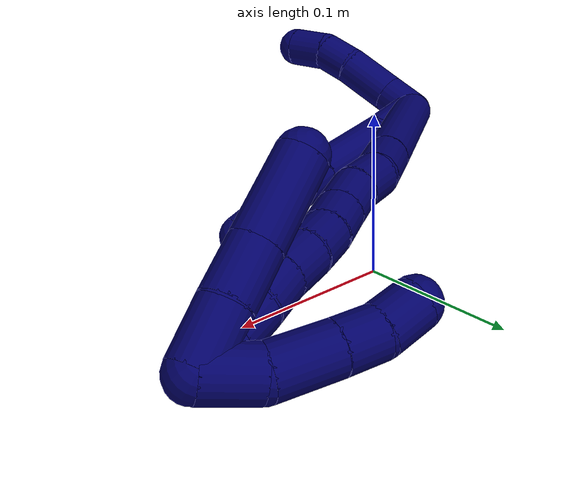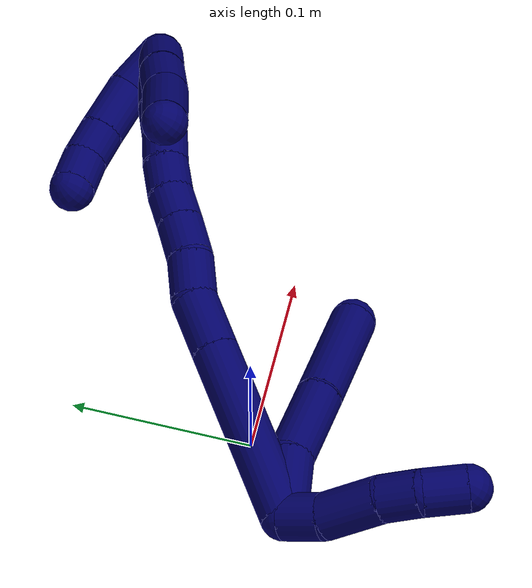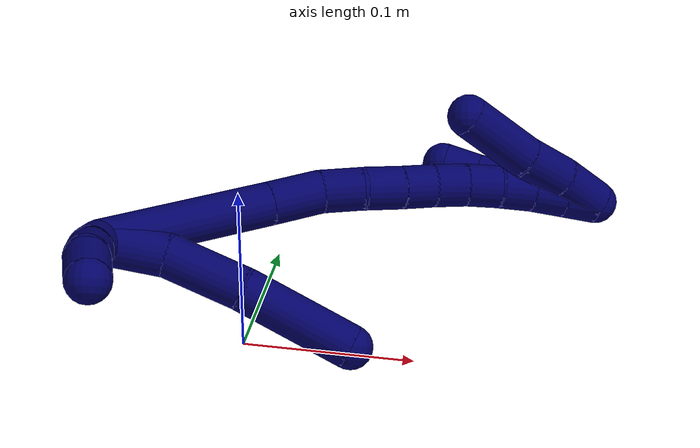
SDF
<sdf version="1.7">
 <world name="default">
  <model name="7">
   <static>0</static>
   <link name="7">
    <collision name="collision-cylinder-e_1_2_8">
     <pose>0.018029 0.003896 -0.002849 -2.20229 1.30921 -1.97308</pose>
     <geometry><cylinder><radius>0.0125</radius><length>0.037328</length></cylinder></geometry>
     <surface>
      <friction><ode><mu>1.16</mu><mu2>1.16</mu2><slip1>0</slip1><slip2>0</slip2></ode></friction>
      <contact><ode><kp>1e+06</kp><kd>1</kd><max_vel>0</max_vel><min_depth>0.001</min_depth></ode></contact>
     </surface>
    </collision>
    <visual name="visual-cylinder-e_1_2_8">
     <pose>0.018029 0.003896 -0.002849 -2.20229 1.30921 -1.97308</pose>
     <geometry><cylinder><radius>0.0125</radius><length>0.037328</length></cylinder></geometry>
     <material><ambient>0.003922 0 0.403922 1</ambient></material>
    </visual>
    <collision name="collision-cylinder-e_2_8_9">
     <pose>0.057294 0.009553 -0.014419 -2.94225 1.17407 -2.84319</pose>
     <geometry><cylinder><radius>0.0125</radius><length>0.046048</length></cylinder></geometry>
     <surface>
      <friction><ode><mu>1.16</mu><mu2>1.16</mu2><slip1>0</slip1><slip2>0</slip2></ode></friction>
      <contact><ode><kp>1e+06</kp><kd>1</kd><max_vel>0</max_vel><min_depth>0.001</min_depth></ode></contact>
     </surface>
    </collision>
    <visual name="visual-cylinder-e_2_8_9">
     <pose>0.057294 0.009553 -0.014419 -2.94225 1.17407 -2.84319</pose>
     <geometry><cylinder><radius>0.0125</radius><length>0.046048</length></cylinder></geometry>
     <material><ambient>0.003922 0 0.403922 1</ambient></material>
    </visual>
    <collision name="collision-cylinder-e_3_9_6">
     <pose>0.107859 0.016954 -0.037893 -2.77656 1.07682 -2.54216</pose>
     <geometry><cylinder><radius>0.0125</radius><length>0.066624</length></cylinder></geometry>
     <surface>
      <friction><ode><mu>1.16</mu><mu2>1.16</mu2><slip1>0</slip1><slip2>0</slip2></ode></friction>
      <contact><ode><kp>1e+06</kp><kd>1</kd><max_vel>0</max_vel><min_depth>0.001</min_depth></ode></contact>
     </surface>
    </collision>
    <visual name="visual-cylinder-e_3_9_6">
     <pose>0.107859 0.016954 -0.037893 -2.77656 1.07682 -2.54216</pose>
     <geometry><cylinder><radius>0.0125</radius><length>0.066624</length></cylinder></geometry>
     <material><ambient>0.003922 0 0.403922 1</ambient></material>
    </visual>
    <collision name="collision-cylinder-e_1_2_10">
     <pose>0.000132 -0.010577 -0.003003 1.84744 0.012047 0.015943</pose>
     <geometry><cylinder><radius>0.0125</radius><length>0.021992</length></cylinder></geometry>
     <surface>
      <friction><ode><mu>1.16</mu><mu2>1.16</mu2><slip1>0</slip1><slip2>0</slip2></ode></friction>
      <contact><ode><kp>1e+06</kp><kd>1</kd><max_vel>0</max_vel><min_depth>0.001</min_depth></ode></contact>
     </surface>
    </collision>
    <visual name="visual-cylinder-e_1_2_10">
     <pose>0.000132 -0.010577 -0.003003 1.84744 0.012047 0.015943</pose>
     <geometry><cylinder><radius>0.0125</radius><length>0.021992</length></cylinder></geometry>
     <material><ambient>0.003922 0 0.403922 1</ambient></material>
    </visual>
    <collision name="collision-cylinder-e_2_10_11">
     <pose>0.004389 -0.03711 -0.008192 1.70694 0.250698 0.286912</pose>
     <geometry><cylinder><radius>0.0125</radius><length>0.03325</length></cylinder></geometry>
     <surface>
      <friction><ode><mu>1.16</mu><mu2>1.16</mu2><slip1>0</slip1><slip2>0</slip2></ode></friction>
      <contact><ode><kp>1e+06</kp><kd>1</kd><max_vel>0</max_vel><min_depth>0.001</min_depth></ode></contact>
     </surface>
    </collision>
    <visual name="visual-cylinder-e_2_10_11">
     <pose>0.004389 -0.03711 -0.008192 1.70694 0.250698 0.286912</pose>
     <geometry><cylinder><radius>0.0125</radius><length>0.03325</length></cylinder></geometry>
     <material><ambient>0.003922 0 0.403922 1</ambient></material>
    </visual>
    <collision name="collision-cylinder-e_3_11_12">
     <pose>0.010334 -0.063164 -0.013395 1.86112 0.171025 0.229146</pose>
     <geometry><cylinder><radius>0.0125</radius><length>0.021389</length></cylinder></geometry>
     <surface>
      <friction><ode><mu>1.16</mu><mu2>1.16</mu2><slip1>0</slip1><slip2>0</slip2></ode></friction>
      <contact><ode><kp>1e+06</kp><kd>1</kd><max_vel>0</max_vel><min_depth>0.001</min_depth></ode></contact>
     </surface>
    </collision>
    <visual name="visual-cylinder-e_3_11_12">
     <pose>0.010334 -0.063164 -0.013395 1.86112 0.171025 0.229146</pose>
     <geometry><cylinder><radius>0.0125</radius><length>0.021389</length></cylinder></geometry>
     <material><ambient>0.003922 0 0.403922 1</ambient></material>
    </visual>
    <collision name="collision-cylinder-e_4_12_5">
     <pose>0.015127 -0.082456 -0.02298 2.19114 0.2573 0.49261</pose>
     <geometry><cylinder><radius>0.0125</radius><length>0.023369</length></cylinder></geometry>
     <surface>
      <friction><ode><mu>1.16</mu><mu2>1.16</mu2><slip1>0</slip1><slip2>0</slip2></ode></friction>
      <contact><ode><kp>1e+06</kp><kd>1</kd><max_vel>0</max_vel><min_depth>0.001</min_depth></ode></contact>
     </surface>
    </collision>
    <visual name="visual-cylinder-e_4_12_5">
     <pose>0.015127 -0.082456 -0.02298 2.19114 0.2573 0.49261</pose>
     <geometry><cylinder><radius>0.0125</radius><length>0.023369</length></cylinder></geometry>
     <material><ambient>0.003922 0 0.403922 1</ambient></material>
    </visual>
    <collision name="collision-cylinder-e_1_2_13">
     <pose>0.042971 0.021121 0.014202 -0.978825 1.03606 -0.589467</pose>
     <geometry><cylinder><radius>0.0125</radius><length>0.099886</length></cylinder></geometry>
     <surface>
      <friction><ode><mu>1.16</mu><mu2>1.16</mu2><slip1>0</slip1><slip2>0</slip2></ode></friction>
      <contact><ode><kp>1e+06</kp><kd>1</kd><max_vel>0</max_vel><min_depth>0.001</min_depth></ode></contact>
     </surface>
    </collision>
    <visual name="visual-cylinder-e_1_2_13">
     <pose>0.042971 0.021121 0.014202 -0.978825 1.03606 -0.589467</pose>
     <geometry><cylinder><radius>0.0125</radius><length>0.099886</length></cylinder></geometry>
     <material><ambient>0.003922 0 0.403922 1</ambient></material>
    </visual>
    <collision name="collision-cylinder-e_2_13_14">
     <pose>0.099726 0.048824 0.033076 -0.953496 1.04103 -0.575697</pose>
     <geometry><cylinder><radius>0.0125</radius><length>0.031948</length></cylinder></geometry>
     <surface>
      <friction><ode><mu>1.16</mu><mu2>1.16</mu2><slip1>0</slip1><slip2>0</slip2></ode></friction>
      <contact><ode><kp>1e+06</kp><kd>1</kd><max_vel>0</max_vel><min_depth>0.001</min_depth></ode></contact>
     </surface>
    </collision>
    <visual name="visual-cylinder-e_2_13_14">
     <pose>0.099726 0.048824 0.033076 -0.953496 1.04103 -0.575697</pose>
     <geometry><cylinder><radius>0.0125</radius><length>0.031948</length></cylinder></geometry>
     <material><ambient>0.003922 0 0.403922 1</ambient></material>
    </visual>
    <collision name="collision-cylinder-e_3_14_15">
     <pose>0.125293 0.058282 0.03919 -1.10616 1.30423 -0.880977</pose>
     <geometry><cylinder><radius>0.0125</radius><length>0.024427</length></cylinder></geometry>
     <surface>
      <friction><ode><mu>1.16</mu><mu2>1.16</mu2><slip1>0</slip1><slip2>0</slip2></ode></friction>
      <contact><ode><kp>1e+06</kp><kd>1</kd><max_vel>0</max_vel><min_depth>0.001</min_depth></ode></contact>
     </surface>
    </collision>
    <visual name="visual-cylinder-e_3_14_15">
     <pose>0.125293 0.058282 0.03919 -1.10616 1.30423 -0.880977</pose>
     <geometry><cylinder><radius>0.0125</radius><length>0.024427</length></cylinder></geometry>
     <material><ambient>0.003922 0 0.403922 1</ambient></material>
    </visual>
    <collision name="collision-cylinder-e_4_15_16">
     <pose>0.14755 0.066157 0.041853 -1.33115 1.11419 -0.909662</pose>
     <geometry><cylinder><radius>0.0125</radius><length>0.023341</length></cylinder></geometry>
     <surface>
      <friction><ode><mu>1.16</mu><mu2>1.16</mu2><slip1>0</slip1><slip2>0</slip2></ode></friction>
      <contact><ode><kp>1e+06</kp><kd>1</kd><max_vel>0</max_vel><min_depth>0.001</min_depth></ode></contact>
     </surface>
    </collision>
    <visual name="visual-cylinder-e_4_15_16">
     <pose>0.14755 0.066157 0.041853 -1.33115 1.11419 -0.909662</pose>
     <geometry><cylinder><radius>0.0125</radius><length>0.023341</length></cylinder></geometry>
     <material><ambient>0.003922 0 0.403922 1</ambient></material>
    </visual>
    <collision name="collision-cylinder-e_5_16_17">
     <pose>0.166925 0.075547 0.044403 -1.27709 1.09482 -0.849792</pose>
     <geometry><cylinder><radius>0.0125</radius><length>0.020028</length></cylinder></geometry>
     <surface>
      <friction><ode><mu>1.16</mu><mu2>1.16</mu2><slip1>0</slip1><slip2>0</slip2></ode></friction>
      <contact><ode><kp>1e+06</kp><kd>1</kd><max_vel>0</max_vel><min_depth>0.001</min_depth></ode></contact>
     </surface>
    </collision>
    <visual name="visual-cylinder-e_5_16_17">
     <pose>0.166925 0.075547 0.044403 -1.27709 1.09482 -0.849792</pose>
     <geometry><cylinder><radius>0.0125</radius><length>0.020028</length></cylinder></geometry>
     <material><ambient>0.003922 0 0.403922 1</ambient></material>
    </visual>
    <collision name="collision-cylinder-e_6_17_18">
     <pose>0.185222 0.083247 0.046627 -1.3063 1.22109 -0.983171</pose>
     <geometry><cylinder><radius>0.0125</radius><length>0.020001</length></cylinder></geometry>
     <surface>
      <friction><ode><mu>1.16</mu><mu2>1.16</mu2><slip1>0</slip1><slip2>0</slip2></ode></friction>
      <contact><ode><kp>1e+06</kp><kd>1</kd><max_vel>0</max_vel><min_depth>0.001</min_depth></ode></contact>
     </surface>
    </collision>
    <visual name="visual-cylinder-e_6_17_18">
     <pose>0.185222 0.083247 0.046627 -1.3063 1.22109 -0.983171</pose>
     <geometry><cylinder><radius>0.0125</radius><length>0.020001</length></cylinder></geometry>
     <material><ambient>0.003922 0 0.403922 1</ambient></material>
    </visual>
    <collision name="collision-cylinder-e_7_18_19">
     <pose>0.204434 0.08926 0.047488 -1.58373 1.30181 -1.3143</pose>
     <geometry><cylinder><radius>0.0125</radius><length>0.020367</length></cylinder></geometry>
     <surface>
      <friction><ode><mu>1.16</mu><mu2>1.16</mu2><slip1>0</slip1><slip2>0</slip2></ode></friction>
      <contact><ode><kp>1e+06</kp><kd>1</kd><max_vel>0</max_vel><min_depth>0.001</min_depth></ode></contact>
     </surface>
    </collision>
    <visual name="visual-cylinder-e_7_18_19">
     <pose>0.204434 0.08926 0.047488 -1.58373 1.30181 -1.3143</pose>
     <geometry><cylinder><radius>0.0125</radius><length>0.020367</length></cylinder></geometry>
     <material><ambient>0.003922 0 0.403922 1</ambient></material>
    </visual>
    <collision name="collision-cylinder-e_8_19_20">
     <pose>0.223486 0.095798 0.047183 -1.64102 1.17658 -1.2423</pose>
     <geometry><cylinder><radius>0.0125</radius><length>0.020002</length></cylinder></geometry>
     <surface>
      <friction><ode><mu>1.16</mu><mu2>1.16</mu2><slip1>0</slip1><slip2>0</slip2></ode></friction>
      <contact><ode><kp>1e+06</kp><kd>1</kd><max_vel>0</max_vel><min_depth>0.001</min_depth></ode></contact>
     </surface>
    </collision>
    <visual name="visual-cylinder-e_8_19_20">
     <pose>0.223486 0.095798 0.047183 -1.64102 1.17658 -1.2423</pose>
     <geometry><cylinder><radius>0.0125</radius><length>0.020002</length></cylinder></geometry>
     <material><ambient>0.003922 0 0.403922 1</ambient></material>
    </visual>
    <collision name="collision-cylinder-e_9_20_21">
     <pose>0.242129 0.102833 0.045817 -1.90074 1.22532 -1.55434</pose>
     <geometry><cylinder><radius>0.0125</radius><length>0.02</length></cylinder></geometry>
     <surface>
      <friction><ode><mu>1.16</mu><mu2>1.16</mu2><slip1>0</slip1><slip2>0</slip2></ode></friction>
      <contact><ode><kp>1e+06</kp><kd>1</kd><max_vel>0</max_vel><min_depth>0.001</min_depth></ode></contact>
     </surface>
    </collision>
    <visual name="visual-cylinder-e_9_20_21">
     <pose>0.242129 0.102833 0.045817 -1.90074 1.22532 -1.55434</pose>
     <geometry><cylinder><radius>0.0125</radius><length>0.02</length></cylinder></geometry>
     <material><ambient>0.003922 0 0.403922 1</ambient></material>
    </visual>
    <collision name="collision-cylinder-e_10_21_1">
     <pose>0.260912 0.109333 0.043598 -1.89868 1.21519 -1.54137</pose>
     <geometry><cylinder><radius>0.0125</radius><length>0.02</length></cylinder></geometry>
     <surface>
      <friction><ode><mu>1.16</mu><mu2>1.16</mu2><slip1>0</slip1><slip2>0</slip2></ode></friction>
      <contact><ode><kp>1e+06</kp><kd>1</kd><max_vel>0</max_vel><min_depth>0.001</min_depth></ode></contact>
     </surface>
    </collision>
    <visual name="visual-cylinder-e_10_21_1">
     <pose>0.260912 0.109333 0.043598 -1.89868 1.21519 -1.54137</pose>
     <geometry><cylinder><radius>0.0125</radius><length>0.02</length></cylinder></geometry>
     <material><ambient>0.003922 0 0.403922 1</ambient></material>
    </visual>
    <collision name="collision-cylinder-e_1_1_22">
     <pose>0.259161 0.119373 0.045201 -1.1869 -0.991868 0.699886</pose>
     <geometry><cylinder><radius>0.0125</radius><length>0.026584</length></cylinder></geometry>
     <surface>
      <friction><ode><mu>1.16</mu><mu2>1.16</mu2><slip1>0</slip1><slip2>0</slip2></ode></friction>
      <contact><ode><kp>1e+06</kp><kd>1</kd><max_vel>0</max_vel><min_depth>0.001</min_depth></ode></contact>
     </surface>
    </collision>
    <visual name="visual-cylinder-e_1_1_22">
     <pose>0.259161 0.119373 0.045201 -1.1869 -0.991868 0.699886</pose>
     <geometry><cylinder><radius>0.0125</radius><length>0.026584</length></cylinder></geometry>
     <material><ambient>0.003922 0 0.403922 1</ambient></material>
    </visual>
    <collision name="collision-cylinder-e_2_22_23">
     <pose>0.233219 0.129053 0.052001 -0.624407 -1.24383 0.454709</pose>
     <geometry><cylinder><radius>0.0125</radius><length>0.031288</length></cylinder></geometry>
     <surface>
      <friction><ode><mu>1.16</mu><mu2>1.16</mu2><slip1>0</slip1><slip2>0</slip2></ode></friction>
      <contact><ode><kp>1e+06</kp><kd>1</kd><max_vel>0</max_vel><min_depth>0.001</min_depth></ode></contact>
     </surface>
    </collision>
    <visual name="visual-cylinder-e_2_22_23">
     <pose>0.233219 0.129053 0.052001 -0.624407 -1.24383 0.454709</pose>
     <geometry><cylinder><radius>0.0125</radius><length>0.031288</length></cylinder></geometry>
     <material><ambient>0.003922 0 0.403922 1</ambient></material>
    </visual>
    <collision name="collision-cylinder-e_3_23_24">
     <pose>0.20875 0.133522 0.058604 -0.544943 -1.27378 0.407645</pose>
     <geometry><cylinder><radius>0.0125</radius><length>0.020193</length></cylinder></geometry>
     <surface>
      <friction><ode><mu>1.16</mu><mu2>1.16</mu2><slip1>0</slip1><slip2>0</slip2></ode></friction>
      <contact><ode><kp>1e+06</kp><kd>1</kd><max_vel>0</max_vel><min_depth>0.001</min_depth></ode></contact>
     </surface>
    </collision>
    <visual name="visual-cylinder-e_3_23_24">
     <pose>0.20875 0.133522 0.058604 -0.544943 -1.27378 0.407645</pose>
     <geometry><cylinder><radius>0.0125</radius><length>0.020193</length></cylinder></geometry>
     <material><ambient>0.003922 0 0.403922 1</ambient></material>
    </visual>
    <collision name="collision-cylinder-e_4_24_4">
     <pose>0.188646 0.134004 0.06429 0.321008 -1.2624 -0.235583</pose>
     <geometry><cylinder><radius>0.0125</radius><length>0.021935</length></cylinder></geometry>
     <surface>
      <friction><ode><mu>1.16</mu><mu2>1.16</mu2><slip1>0</slip1><slip2>0</slip2></ode></friction>
      <contact><ode><kp>1e+06</kp><kd>1</kd><max_vel>0</max_vel><min_depth>0.001</min_depth></ode></contact>
     </surface>
    </collision>
    <visual name="visual-cylinder-e_4_24_4">
     <pose>0.188646 0.134004 0.06429 0.321008 -1.2624 -0.235583</pose>
     <geometry><cylinder><radius>0.0125</radius><length>0.021935</length></cylinder></geometry>
     <material><ambient>0.003922 0 0.403922 1</ambient></material>
    </visual>
    <collision name="collision-cylinder-e_1_1_25">
     <pose>0.260396 0.104838 0.048299 0.929099 -0.793736 -0.414034</pose>
     <geometry><cylinder><radius>0.0125</radius><length>0.027744</length></cylinder></geometry>
     <surface>
      <friction><ode><mu>1.16</mu><mu2>1.16</mu2><slip1>0</slip1><slip2>0</slip2></ode></friction>
      <contact><ode><kp>1e+06</kp><kd>1</kd><max_vel>0</max_vel><min_depth>0.001</min_depth></ode></contact>
     </surface>
    </collision>
    <visual name="visual-cylinder-e_1_1_25">
     <pose>0.260396 0.104838 0.048299 0.929099 -0.793736 -0.414034</pose>
     <geometry><cylinder><radius>0.0125</radius><length>0.027744</length></cylinder></geometry>
     <material><ambient>0.003922 0 0.403922 1</ambient></material>
    </visual>
    <collision name="collision-cylinder-e_2_25_26">
     <pose>0.239838 0.089353 0.058793 1.02503 -0.870028 -0.511492</pose>
     <geometry><cylinder><radius>0.0125</radius><length>0.027914</length></cylinder></geometry>
     <surface>
      <friction><ode><mu>1.16</mu><mu2>1.16</mu2><slip1>0</slip1><slip2>0</slip2></ode></friction>
      <contact><ode><kp>1e+06</kp><kd>1</kd><max_vel>0</max_vel><min_depth>0.001</min_depth></ode></contact>
     </surface>
    </collision>
    <visual name="visual-cylinder-e_2_25_26">
     <pose>0.239838 0.089353 0.058793 1.02503 -0.870028 -0.511492</pose>
     <geometry><cylinder><radius>0.0125</radius><length>0.027914</length></cylinder></geometry>
     <material><ambient>0.003922 0 0.403922 1</ambient></material>
    </visual>
    <collision name="collision-cylinder-e_3_26_3">
     <pose>0.213088 0.069897 0.073187 0.880123 -0.81153 -0.399178</pose>
     <geometry><cylinder><radius>0.0125</radius><length>0.044342</length></cylinder></geometry>
     <surface>
      <friction><ode><mu>1.16</mu><mu2>1.16</mu2><slip1>0</slip1><slip2>0</slip2></ode></friction>
      <contact><ode><kp>1e+06</kp><kd>1</kd><max_vel>0</max_vel><min_depth>0.001</min_depth></ode></contact>
     </surface>
    </collision>
    <visual name="visual-cylinder-e_3_26_3">
     <pose>0.213088 0.069897 0.073187 0.880123 -0.81153 -0.399178</pose>
     <geometry><cylinder><radius>0.0125</radius><length>0.044342</length></cylinder></geometry>
     <material><ambient>0.003922 0 0.403922 1</ambient></material>
    </visual>
    <collision name="collision-sphere-3">
     <pose>0.197007 0.058132 0.08291 0 -0 0</pose>
     <geometry><sphere><radius>0.0125</radius></sphere></geometry>
     <surface>
      <friction><ode><mu>1.16</mu><mu2>1.16</mu2><slip1>0</slip1><slip2>0</slip2></ode></friction>
      <contact><ode><kp>1e+06</kp><kd>1</kd><max_vel>0</max_vel><min_depth>0.001</min_depth></ode></contact>
     </surface>
    </collision>
    <visual name="visual-sphere-3">
     <pose>0.197007 0.058132 0.08291 0 -0 0</pose>
     <geometry><sphere><radius>0.0125</radius></sphere></geometry>
     <material><ambient>0.003922 0 0.403922 1</ambient></material>
    </visual>
    <collision name="collision-sphere-26">
     <pose>0.22917 0.081661 0.063464 0 -0 0</pose>
     <geometry><sphere><radius>0.0125</radius></sphere></geometry>
     <surface>
      <friction><ode><mu>1.16</mu><mu2>1.16</mu2><slip1>0</slip1><slip2>0</slip2></ode></friction>
      <contact><ode><kp>1e+06</kp><kd>1</kd><max_vel>0</max_vel><min_depth>0.001</min_depth></ode></contact>
     </surface>
    </collision>
    <visual name="visual-sphere-26">
     <pose>0.22917 0.081661 0.063464 0 -0 0</pose>
     <geometry><sphere><radius>0.0125</radius></sphere></geometry>
     <material><ambient>0.003922 0 0.403922 1</ambient></material>
    </visual>
    <collision name="collision-sphere-25">
     <pose>0.250506 0.097046 0.054121 0 -0 0</pose>
     <geometry><sphere><radius>0.0125</radius></sphere></geometry>
     <surface>
      <friction><ode><mu>1.16</mu><mu2>1.16</mu2><slip1>0</slip1><slip2>0</slip2></ode></friction>
      <contact><ode><kp>1e+06</kp><kd>1</kd><max_vel>0</max_vel><min_depth>0.001</min_depth></ode></contact>
     </surface>
    </collision>
    <visual name="visual-sphere-25">
     <pose>0.250506 0.097046 0.054121 0 -0 0</pose>
     <geometry><sphere><radius>0.0125</radius></sphere></geometry>
     <material><ambient>0.003922 0 0.403922 1</ambient></material>
    </visual>
    <collision name="collision-sphere-4">
     <pose>0.178195 0.132953 0.067449 0 -0 0</pose>
     <geometry><sphere><radius>0.0125</radius></sphere></geometry>
     <surface>
      <friction><ode><mu>1.16</mu><mu2>1.16</mu2><slip1>0</slip1><slip2>0</slip2></ode></friction>
      <contact><ode><kp>1e+06</kp><kd>1</kd><max_vel>0</max_vel><min_depth>0.001</min_depth></ode></contact>
     </surface>
    </collision>
    <visual name="visual-sphere-4">
     <pose>0.178195 0.132953 0.067449 0 -0 0</pose>
     <geometry><sphere><radius>0.0125</radius></sphere></geometry>
     <material><ambient>0.003922 0 0.403922 1</ambient></material>
    </visual>
    <collision name="collision-sphere-24">
     <pose>0.199096 0.135054 0.061131 0 -0 0</pose>
     <geometry><sphere><radius>0.0125</radius></sphere></geometry>
     <surface>
      <friction><ode><mu>1.16</mu><mu2>1.16</mu2><slip1>0</slip1><slip2>0</slip2></ode></friction>
      <contact><ode><kp>1e+06</kp><kd>1</kd><max_vel>0</max_vel><min_depth>0.001</min_depth></ode></contact>
     </surface>
    </collision>
    <visual name="visual-sphere-24">
     <pose>0.199096 0.135054 0.061131 0 -0 0</pose>
     <geometry><sphere><radius>0.0125</radius></sphere></geometry>
     <material><ambient>0.003922 0 0.403922 1</ambient></material>
    </visual>
    <collision name="collision-sphere-23">
     <pose>0.218404 0.131991 0.056077 0 -0 0</pose>
     <geometry><sphere><radius>0.0125</radius></sphere></geometry>
     <surface>
      <friction><ode><mu>1.16</mu><mu2>1.16</mu2><slip1>0</slip1><slip2>0</slip2></ode></friction>
      <contact><ode><kp>1e+06</kp><kd>1</kd><max_vel>0</max_vel><min_depth>0.001</min_depth></ode></contact>
     </surface>
    </collision>
    <visual name="visual-sphere-23">
     <pose>0.218404 0.131991 0.056077 0 -0 0</pose>
     <geometry><sphere><radius>0.0125</radius></sphere></geometry>
     <material><ambient>0.003922 0 0.403922 1</ambient></material>
    </visual>
    <collision name="collision-sphere-22">
     <pose>0.248035 0.126116 0.047925 0 -0 0</pose>
     <geometry><sphere><radius>0.0125</radius></sphere></geometry>
     <surface>
      <friction><ode><mu>1.16</mu><mu2>1.16</mu2><slip1>0</slip1><slip2>0</slip2></ode></friction>
      <contact><ode><kp>1e+06</kp><kd>1</kd><max_vel>0</max_vel><min_depth>0.001</min_depth></ode></contact>
     </surface>
    </collision>
    <visual name="visual-sphere-22">
     <pose>0.248035 0.126116 0.047925 0 -0 0</pose>
     <geometry><sphere><radius>0.0125</radius></sphere></geometry>
     <material><ambient>0.003922 0 0.403922 1</ambient></material>
    </visual>
    <collision name="collision-sphere-1">
     <pose>0.270287 0.11263 0.042477 0 -0 0</pose>
     <geometry><sphere><radius>0.0125</radius></sphere></geometry>
     <surface>
      <friction><ode><mu>1.16</mu><mu2>1.16</mu2><slip1>0</slip1><slip2>0</slip2></ode></friction>
      <contact><ode><kp>1e+06</kp><kd>1</kd><max_vel>0</max_vel><min_depth>0.001</min_depth></ode></contact>
     </surface>
    </collision>
    <visual name="visual-sphere-1">
     <pose>0.270287 0.11263 0.042477 0 -0 0</pose>
     <geometry><sphere><radius>0.0125</radius></sphere></geometry>
     <material><ambient>0.003922 0 0.403922 1</ambient></material>
    </visual>
    <collision name="collision-sphere-21">
     <pose>0.251538 0.106037 0.04472 0 -0 0</pose>
     <geometry><sphere><radius>0.0125</radius></sphere></geometry>
     <surface>
      <friction><ode><mu>1.16</mu><mu2>1.16</mu2><slip1>0</slip1><slip2>0</slip2></ode></friction>
      <contact><ode><kp>1e+06</kp><kd>1</kd><max_vel>0</max_vel><min_depth>0.001</min_depth></ode></contact>
     </surface>
    </collision>
    <visual name="visual-sphere-21">
     <pose>0.251538 0.106037 0.04472 0 -0 0</pose>
     <geometry><sphere><radius>0.0125</radius></sphere></geometry>
     <material><ambient>0.003922 0 0.403922 1</ambient></material>
    </visual>
    <collision name="collision-sphere-11">
     <pose>0.008514 -0.053067 -0.010378 0 -0 0</pose>
     <geometry><sphere><radius>0.0125</radius></sphere></geometry>
     <surface>
      <friction><ode><mu>1.16</mu><mu2>1.16</mu2><slip1>0</slip1><slip2>0</slip2></ode></friction>
      <contact><ode><kp>1e+06</kp><kd>1</kd><max_vel>0</max_vel><min_depth>0.001</min_depth></ode></contact>
     </surface>
    </collision>
    <visual name="visual-sphere-11">
     <pose>0.008514 -0.053067 -0.010378 0 -0 0</pose>
     <geometry><sphere><radius>0.0125</radius></sphere></geometry>
     <material><ambient>0.003922 0 0.403922 1</ambient></material>
    </visual>
    <collision name="collision-sphere-10">
     <pose>0.000265 -0.021154 -0.006006 0 -0 0</pose>
     <geometry><sphere><radius>0.0125</radius></sphere></geometry>
     <surface>
      <friction><ode><mu>1.16</mu><mu2>1.16</mu2><slip1>0</slip1><slip2>0</slip2></ode></friction>
      <contact><ode><kp>1e+06</kp><kd>1</kd><max_vel>0</max_vel><min_depth>0.001</min_depth></ode></contact>
     </surface>
    </collision>
    <visual name="visual-sphere-10">
     <pose>0.000265 -0.021154 -0.006006 0 -0 0</pose>
     <geometry><sphere><radius>0.0125</radius></sphere></geometry>
     <material><ambient>0.003922 0 0.403922 1</ambient></material>
    </visual>
    <collision name="collision-sphere-6">
     <pose>0.137189 0.022592 -0.052647 0 -0 0</pose>
     <geometry><sphere><radius>0.0125</radius></sphere></geometry>
     <surface>
      <friction><ode><mu>1.16</mu><mu2>1.16</mu2><slip1>0</slip1><slip2>0</slip2></ode></friction>
      <contact><ode><kp>1e+06</kp><kd>1</kd><max_vel>0</max_vel><min_depth>0.001</min_depth></ode></contact>
     </surface>
    </collision>
    <visual name="visual-sphere-6">
     <pose>0.137189 0.022592 -0.052647 0 -0 0</pose>
     <geometry><sphere><radius>0.0125</radius></sphere></geometry>
     <material><ambient>0.003922 0 0.403922 1</ambient></material>
    </visual>
    <collision name="collision-sphere-9">
     <pose>0.07853 0.011315 -0.02314 0 -0 0</pose>
     <geometry><sphere><radius>0.0125</radius></sphere></geometry>
     <surface>
      <friction><ode><mu>1.16</mu><mu2>1.16</mu2><slip1>0</slip1><slip2>0</slip2></ode></friction>
      <contact><ode><kp>1e+06</kp><kd>1</kd><max_vel>0</max_vel><min_depth>0.001</min_depth></ode></contact>
     </surface>
    </collision>
    <visual name="visual-sphere-9">
     <pose>0.07853 0.011315 -0.02314 0 -0 0</pose>
     <geometry><sphere><radius>0.0125</radius></sphere></geometry>
     <material><ambient>0.003922 0 0.403922 1</ambient></material>
    </visual>
    <collision name="collision-sphere-2">
     <geometry><sphere><radius>0.0125</radius></sphere></geometry>
     <surface>
      <friction><ode><mu>1.16</mu><mu2>1.16</mu2><slip1>0</slip1><slip2>0</slip2></ode></friction>
      <contact><ode><kp>1e+06</kp><kd>1</kd><max_vel>0</max_vel><min_depth>0.001</min_depth></ode></contact>
     </surface>
    </collision>
    <visual name="visual-sphere-2">
     <geometry><sphere><radius>0.0125</radius></sphere></geometry>
     <material><ambient>0.003922 0 0.403922 1</ambient></material>
    </visual>
    <collision name="collision-sphere-19">
     <pose>0.214252 0.091966 0.047453 0 -0 0</pose>
     <geometry><sphere><radius>0.0125</radius></sphere></geometry>
     <surface>
      <friction><ode><mu>1.16</mu><mu2>1.16</mu2><slip1>0</slip1><slip2>0</slip2></ode></friction>
      <contact><ode><kp>1e+06</kp><kd>1</kd><max_vel>0</max_vel><min_depth>0.001</min_depth></ode></contact>
     </surface>
    </collision>
    <visual name="visual-sphere-19">
     <pose>0.214252 0.091966 0.047453 0 -0 0</pose>
     <geometry><sphere><radius>0.0125</radius></sphere></geometry>
     <material><ambient>0.003922 0 0.403922 1</ambient></material>
    </visual>
    <collision name="collision-sphere-8">
     <pose>0.036058 0.007792 -0.005699 0 -0 0</pose>
     <geometry><sphere><radius>0.0125</radius></sphere></geometry>
     <surface>
      <friction><ode><mu>1.16</mu><mu2>1.16</mu2><slip1>0</slip1><slip2>0</slip2></ode></friction>
      <contact><ode><kp>1e+06</kp><kd>1</kd><max_vel>0</max_vel><min_depth>0.001</min_depth></ode></contact>
     </surface>
    </collision>
    <visual name="visual-sphere-8">
     <pose>0.036058 0.007792 -0.005699 0 -0 0</pose>
     <geometry><sphere><radius>0.0125</radius></sphere></geometry>
     <material><ambient>0.003922 0 0.403922 1</ambient></material>
    </visual>
    <collision name="collision-sphere-12">
     <pose>0.012154 -0.073262 -0.016412 0 -0 0</pose>
     <geometry><sphere><radius>0.0125</radius></sphere></geometry>
     <surface>
      <friction><ode><mu>1.16</mu><mu2>1.16</mu2><slip1>0</slip1><slip2>0</slip2></ode></friction>
      <contact><ode><kp>1e+06</kp><kd>1</kd><max_vel>0</max_vel><min_depth>0.001</min_depth></ode></contact>
     </surface>
    </collision>
    <visual name="visual-sphere-12">
     <pose>0.012154 -0.073262 -0.016412 0 -0 0</pose>
     <geometry><sphere><radius>0.0125</radius></sphere></geometry>
     <material><ambient>0.003922 0 0.403922 1</ambient></material>
    </visual>
    <collision name="collision-sphere-5">
     <pose>0.018101 -0.091651 -0.029549 0 -0 0</pose>
     <geometry><sphere><radius>0.0125</radius></sphere></geometry>
     <surface>
      <friction><ode><mu>1.16</mu><mu2>1.16</mu2><slip1>0</slip1><slip2>0</slip2></ode></friction>
      <contact><ode><kp>1e+06</kp><kd>1</kd><max_vel>0</max_vel><min_depth>0.001</min_depth></ode></contact>
     </surface>
    </collision>
    <visual name="visual-sphere-5">
     <pose>0.018101 -0.091651 -0.029549 0 -0 0</pose>
     <geometry><sphere><radius>0.0125</radius></sphere></geometry>
     <material><ambient>0.003922 0 0.403922 1</ambient></material>
    </visual>
    <collision name="collision-sphere-13">
     <pose>0.085942 0.042241 0.028404 0 -0 0</pose>
     <geometry><sphere><radius>0.0125</radius></sphere></geometry>
     <surface>
      <friction><ode><mu>1.16</mu><mu2>1.16</mu2><slip1>0</slip1><slip2>0</slip2></ode></friction>
      <contact><ode><kp>1e+06</kp><kd>1</kd><max_vel>0</max_vel><min_depth>0.001</min_depth></ode></contact>
     </surface>
    </collision>
    <visual name="visual-sphere-13">
     <pose>0.085942 0.042241 0.028404 0 -0 0</pose>
     <geometry><sphere><radius>0.0125</radius></sphere></geometry>
     <material><ambient>0.003922 0 0.403922 1</ambient></material>
    </visual>
    <collision name="collision-sphere-14">
     <pose>0.113511 0.055406 0.037749 0 -0 0</pose>
     <geometry><sphere><radius>0.0125</radius></sphere></geometry>
     <surface>
      <friction><ode><mu>1.16</mu><mu2>1.16</mu2><slip1>0</slip1><slip2>0</slip2></ode></friction>
      <contact><ode><kp>1e+06</kp><kd>1</kd><max_vel>0</max_vel><min_depth>0.001</min_depth></ode></contact>
     </surface>
    </collision>
    <visual name="visual-sphere-14">
     <pose>0.113511 0.055406 0.037749 0 -0 0</pose>
     <geometry><sphere><radius>0.0125</radius></sphere></geometry>
     <material><ambient>0.003922 0 0.403922 1</ambient></material>
    </visual>
    <collision name="collision-sphere-15">
     <pose>0.137075 0.061159 0.040632 0 -0 0</pose>
     <geometry><sphere><radius>0.0125</radius></sphere></geometry>
     <surface>
      <friction><ode><mu>1.16</mu><mu2>1.16</mu2><slip1>0</slip1><slip2>0</slip2></ode></friction>
      <contact><ode><kp>1e+06</kp><kd>1</kd><max_vel>0</max_vel><min_depth>0.001</min_depth></ode></contact>
     </surface>
    </collision>
    <visual name="visual-sphere-15">
     <pose>0.137075 0.061159 0.040632 0 -0 0</pose>
     <geometry><sphere><radius>0.0125</radius></sphere></geometry>
     <material><ambient>0.003922 0 0.403922 1</ambient></material>
    </visual>
    <collision name="collision-sphere-16">
     <pose>0.158024 0.071155 0.043075 0 -0 0</pose>
     <geometry><sphere><radius>0.0125</radius></sphere></geometry>
     <surface>
      <friction><ode><mu>1.16</mu><mu2>1.16</mu2><slip1>0</slip1><slip2>0</slip2></ode></friction>
      <contact><ode><kp>1e+06</kp><kd>1</kd><max_vel>0</max_vel><min_depth>0.001</min_depth></ode></contact>
     </surface>
    </collision>
    <visual name="visual-sphere-16">
     <pose>0.158024 0.071155 0.043075 0 -0 0</pose>
     <geometry><sphere><radius>0.0125</radius></sphere></geometry>
     <material><ambient>0.003922 0 0.403922 1</ambient></material>
    </visual>
    <collision name="collision-sphere-17">
     <pose>0.175826 0.079939 0.045731 0 -0 0</pose>
     <geometry><sphere><radius>0.0125</radius></sphere></geometry>
     <surface>
      <friction><ode><mu>1.16</mu><mu2>1.16</mu2><slip1>0</slip1><slip2>0</slip2></ode></friction>
      <contact><ode><kp>1e+06</kp><kd>1</kd><max_vel>0</max_vel><min_depth>0.001</min_depth></ode></contact>
     </surface>
    </collision>
    <visual name="visual-sphere-17">
     <pose>0.175826 0.079939 0.045731 0 -0 0</pose>
     <geometry><sphere><radius>0.0125</radius></sphere></geometry>
     <material><ambient>0.003922 0 0.403922 1</ambient></material>
    </visual>
    <collision name="collision-sphere-18">
     <pose>0.194617 0.086554 0.047523 0 -0 0</pose>
     <geometry><sphere><radius>0.0125</radius></sphere></geometry>
     <surface>
      <friction><ode><mu>1.16</mu><mu2>1.16</mu2><slip1>0</slip1><slip2>0</slip2></ode></friction>
      <contact><ode><kp>1e+06</kp><kd>1</kd><max_vel>0</max_vel><min_depth>0.001</min_depth></ode></contact>
     </surface>
    </collision>
    <visual name="visual-sphere-18">
     <pose>0.194617 0.086554 0.047523 0 -0 0</pose>
     <geometry><sphere><radius>0.0125</radius></sphere></geometry>
     <material><ambient>0.003922 0 0.403922 1</ambient></material>
    </visual>
    <collision name="collision-sphere-20">
     <pose>0.23272 0.09963 0.046914 0 -0 0</pose>
     <geometry><sphere><radius>0.0125</radius></sphere></geometry>
     <surface>
      <friction><ode><mu>1.16</mu><mu2>1.16</mu2><slip1>0</slip1><slip2>0</slip2></ode></friction>
      <contact><ode><kp>1e+06</kp><kd>1</kd><max_vel>0</max_vel><min_depth>0.001</min_depth></ode></contact>
     </surface>
    </collision>
    <visual name="visual-sphere-20">
     <pose>0.23272 0.09963 0.046914 0 -0 0</pose>
     <geometry><sphere><radius>0.0125</radius></sphere></geometry>
     <material><ambient>0.003922 0 0.403922 1</ambient></material>
    </visual>
    <inertial>
     <pose>0.129138 0.04815 0.02283 0 -0 0</pose>
     <mass>0.75</mass>
     <inertia>
      <ixx>2.8e-05</ixx>
      <ixy>0</ixy>
      <ixz>0</ixz>
      <iyy>0.000111</iyy>
      <iyz>0</iyz>
      <izz>-0.000144</izz>
     </inertia>
    </inertial>
   </link>
   <pose>-0.069796 -0.034901 0.082494 -0.663189 -0.041229 0.073757</pose>
  </model>
 </world>
</sdf>
